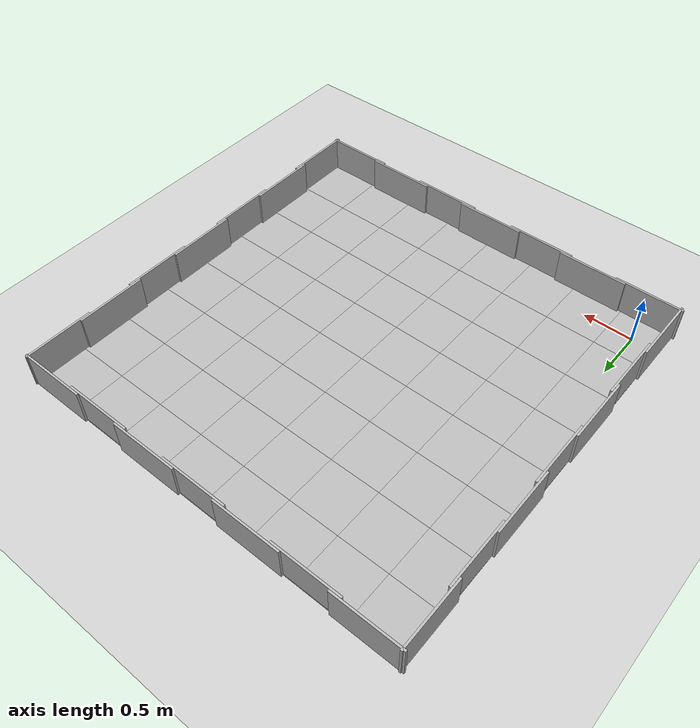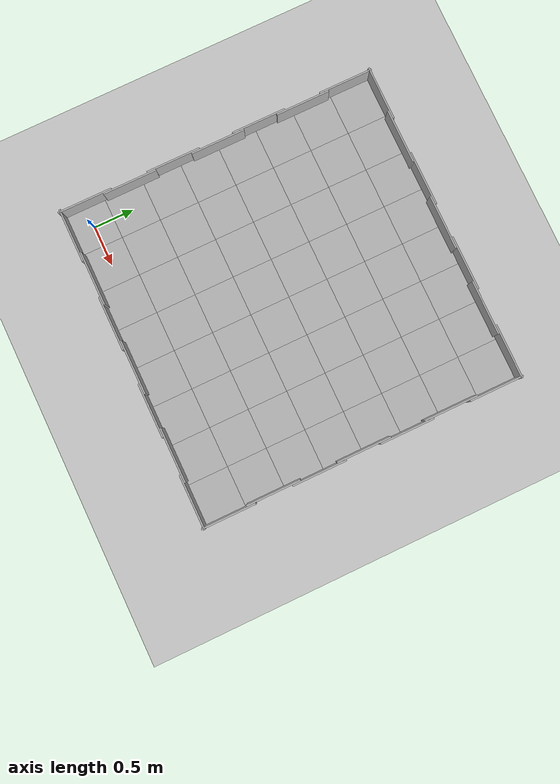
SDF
<sdf version="1.5">
 <world name="default">
  <physics name="default_physics" default="0" type="ode">
   <max_step_size>0.001</max_step_size>
   <real_time_factor>1</real_time_factor>
   <real_time_update_rate>1000</real_time_update_rate>
  </physics>
  <scene>
   <ambient>0.4 0.4 0.4 1</ambient>
   <background>0.7 0.7 0.7 1</background>
   <shadows>0</shadows>
   <grid>0</grid>
  </scene>
  <light name="sun" type="directional">
   <cast_shadows>0</cast_shadows>
   <pose>0 -100 10 0 -0 0</pose>
   <diffuse>0.8 0.8 0.8 1</diffuse>
   <specular>0.1 0.1 0.1 1</specular>
   <attenuation>
    <range>1000</range>
    <constant>0.9</constant>
    <linear>0.01</linear>
    <quadratic>0.001</quadratic>
   </attenuation>
   <direction>-0.5 0.5 -1</direction>
  </light>
  <include><uri>model://ground_plane</uri></include>
  <include><name>arena</name><uri>model://dia_cr5_arena</uri></include>
  <include><name>panel-1n</name><uri>model://dia_panel_big</uri><pose>0.05 -0.26 0.17 1.57 0 0</pose></include>
  <include><name>panel-2n</name><uri>model://dia_panel_big</uri><pose>0.62 -0.24 0.17 1.57 0 0</pose></include>
  <include><name>panel-3n</name><uri>model://dia_panel_big</uri><pose>1.19 -0.26 0.17 1.57 0 0</pose></include>
  <include><name>panel-4n</name><uri>model://dia_panel_big</uri><pose>1.76 -0.24 0.17 1.57 0 0</pose></include>
  <include><name>panel-5n</name><uri>model://dia_panel_big</uri><pose>2.3 -0.26 0.17 1.57 0 0</pose></include>
  <include><name>panel-6n</name><uri>model://dia_panel_big</uri><pose>2.87 -0.24 0.17 1.57 0 0</pose></include>
  <include><name>panel-7n</name><uri>model://dia_panel_big</uri><pose>3.44 -0.26 0.17 1.57 0 0</pose></include>
  <include>
   <name>panel-1e</name>
   <uri>model://dia_panel_big</uri>
   <pose>-0.26 0.05 0.17 1.57 0 1.57</pose>
  </include>
  <include>
   <name>panel-2e</name>
   <uri>model://dia_panel_big</uri>
   <pose>-0.24 0.62 0.17 1.57 0 1.57</pose>
  </include>
  <include>
   <name>panel-3e</name>
   <uri>model://dia_panel_big</uri>
   <pose>-0.26 1.19 0.17 1.57 0 1.57</pose>
  </include>
  <include>
   <name>panel-4e</name>
   <uri>model://dia_panel_big</uri>
   <pose>-0.24 1.76 0.17 1.57 0 1.57</pose>
  </include>
  <include>
   <name>panel-5e</name>
   <uri>model://dia_panel_big</uri>
   <pose>-0.26 2.3 0.17 1.57 0 1.57</pose>
  </include>
  <include>
   <name>panel-6e</name>
   <uri>model://dia_panel_big</uri>
   <pose>-0.24 2.87 0.17 1.57 0 1.57</pose>
  </include>
  <include>
   <name>panel-7e</name>
   <uri>model://dia_panel_big</uri>
   <pose>-0.26 3.44 0.17 1.57 0 1.57</pose>
  </include>
  <include><name>panel-1s</name><uri>model://dia_panel_big</uri><pose>0.05 3.76 0.17 1.57 0 0</pose></include>
  <include><name>panel-2s</name><uri>model://dia_panel_big</uri><pose>0.62 3.74 0.17 1.57 0 0</pose></include>
  <include><name>panel-3s</name><uri>model://dia_panel_big</uri><pose>1.19 3.76 0.17 1.57 0 0</pose></include>
  <include><name>panel-4s</name><uri>model://dia_panel_big</uri><pose>1.76 3.74 0.17 1.57 0 0</pose></include>
  <include><name>panel-5s</name><uri>model://dia_panel_big</uri><pose>2.3 3.76 0.17 1.57 0 0</pose></include>
  <include><name>panel-6s</name><uri>model://dia_panel_big</uri><pose>2.87 3.74 0.17 1.57 0 0</pose></include>
  <include><name>panel-7s</name><uri>model://dia_panel_big</uri><pose>3.44 3.76 0.17 1.57 0 0</pose></include>
  <include>
   <name>panel-1w</name>
   <uri>model://dia_panel_big</uri>
   <pose>3.76 0.05 0.17 1.57 0 1.57</pose>
  </include>
  <include>
   <name>panel-2w</name>
   <uri>model://dia_panel_big</uri>
   <pose>3.74 0.62 0.17 1.57 0 1.57</pose>
  </include>
  <include>
   <name>panel-3w</name>
   <uri>model://dia_panel_big</uri>
   <pose>3.76 1.19 0.17 1.57 0 1.57</pose>
  </include>
  <include>
   <name>panel-4w</name>
   <uri>model://dia_panel_big</uri>
   <pose>3.74 1.76 0.17 1.57 0 1.57</pose>
  </include>
  <include><name>panel-5w</name><uri>model://dia_panel_big</uri><pose>3.76 2.3 0.17 1.57 0 1.57</pose></include>
  <include>
   <name>panel-6w</name>
   <uri>model://dia_panel_big</uri>
   <pose>3.74 2.87 0.17 1.57 0 1.57</pose>
  </include>
  <include>
   <name>panel-7w</name>
   <uri>model://dia_panel_big</uri>
   <pose>3.76 3.44 0.17 1.57 0 1.57</pose>
  </include>
  <gravity>0 0 -9.8</gravity>
  <magnetic_field>6e-06 2.3e-05 -4.2e-05</magnetic_field>
  <atmosphere type="adiabatic"/>
  <spherical_coordinates>
   <surface_model>EARTH_WGS84</surface_model>
   <latitude_deg>0</latitude_deg>
   <longitude_deg>0</longitude_deg>
   <elevation>0</elevation>
   <heading_deg>0</heading_deg>
  </spherical_coordinates>
 </world>
</sdf>

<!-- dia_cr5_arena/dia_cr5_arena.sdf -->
<sdf version="1.5">
  <model name="dia_cr5_arena">
    <static>true</static>
    <link name="link">
      <collision name="surface_collision">
        <pose>1.75 1.75 0 0 0 0 0</pose>
        <geometry>
          <box>
            <size>4.1 4.1 0.01</size>
          </box>
        </geometry>
        <surface>
          <friction>
            <ode>
              <mu>0.20</mu>
              <mu2>0.20</mu2>
            </ode>
          </friction>
        </surface>
      </collision>

      <!-- Floor -->

      <visual name="tile-1">
        <pose>0 0 0 0 0 0 0</pose>
        <geometry>
          <box>
            <size>0.5 0.5 0.01</size>
          </box>
        </geometry>
        <material>
          <script>
            <uri>model://dia_cr5_arena/materials/scripts</uri>
            <uri>model://dia_cr5_arena/materials/textures</uri>
            <name>arena_tile/Diffuse</name>
          </script>
        </material>
      </visual>

      <visual name="tile-2">
        <pose>0.5 0 0 0 0 0 0</pose>
        <geometry>
          <box>
            <size>0.5 0.5 0.01</size>
          </box>
        </geometry>
        <material>
          <script>
            <uri>model://dia_cr5_arena/materials/scripts</uri>
            <uri>model://dia_cr5_arena/materials/textures</uri>
            <name>arena_tile/Diffuse</name>
          </script>
        </material>
      </visual>

      <visual name="tile-3">
        <pose>1 0 0 0 0 0 0</pose>
        <geometry>
          <box>
            <size>0.5 0.5 0.01</size>
          </box>
        </geometry>
        <material>
          <script>
            <uri>model://dia_cr5_arena/materials/scripts</uri>
            <uri>model://dia_cr5_arena/materials/textures</uri>
            <name>arena_tile/Diffuse</name>
          </script>
        </material>
      </visual>

      <visual name="tile-4">
        <pose>1.5 0 0 0 0 0 0</pose>
        <geometry>
          <box>
            <size>0.5 0.5 0.01</size>
          </box>
        </geometry>
        <material>
          <script>
            <uri>model://dia_cr5_arena/materials/scripts</uri>
            <uri>model://dia_cr5_arena/materials/textures</uri>
            <name>arena_tile/Diffuse</name>
          </script>
        </material>
      </visual>

      <visual name="tile-5">
        <pose>2 0 0 0 0 0 0</pose>
        <geometry>
          <box>
            <size>0.5 0.5 0.01</size>
          </box>
        </geometry>
        <material>
          <script>
            <uri>model://dia_cr5_arena/materials/scripts</uri>
            <uri>model://dia_cr5_arena/materials/textures</uri>
            <name>arena_tile/Diffuse</name>
          </script>
        </material>
      </visual>

      <visual name="tile-6">
        <pose>2.5 0 0 0 0 0 0</pose>
        <geometry>
          <box>
            <size>0.5 0.5 0.01</size>
          </box>
        </geometry>
        <material>
          <script>
            <uri>model://dia_cr5_arena/materials/scripts</uri>
            <uri>model://dia_cr5_arena/materials/textures</uri>
            <name>arena_tile/Diffuse</name>
          </script>
        </material>
      </visual>

      <visual name="tile-7">
        <pose>3 0 0 0 0 0 0</pose>
        <geometry>
          <box>
            <size>0.5 0.5 0.01</size>
          </box>
        </geometry>
        <material>
          <script>
            <uri>model://dia_cr5_arena/materials/scripts</uri>
            <uri>model://dia_cr5_arena/materials/textures</uri>
            <name>arena_tile/Diffuse</name>
          </script>
        </material>
      </visual>

      <visual name="tile-8">
        <pose>3.5 0 0 0 0 0 0</pose>
        <geometry>
          <box>
            <size>0.5 0.5 0.01</size>
          </box>
        </geometry>
        <material>
          <script>
            <uri>model://dia_cr5_arena/materials/scripts</uri>
            <uri>model://dia_cr5_arena/materials/textures</uri>
            <name>arena_tile/Diffuse</name>
          </script>
        </material>
      </visual>

      <visual name="tile-9">
        <pose>0 0.5 0 0 0 0 0</pose>
        <geometry>
          <box>
            <size>0.5 0.5 0.01</size>
          </box>
        </geometry>
        <material>
          <script>
            <uri>model://dia_cr5_arena/materials/scripts</uri>
            <uri>model://dia_cr5_arena/materials/textures</uri>
            <name>arena_tile/Diffuse</name>
          </script>
        </material>
      </visual>

      <visual name="tile-10">
        <pose>0.5 0.5 0 0 0 0 0</pose>
        <geometry>
          <box>
            <size>0.5 0.5 0.01</size>
          </box>
        </geometry>
        <material>
          <script>
            <uri>model://dia_cr5_arena/materials/scripts</uri>
            <uri>model://dia_cr5_arena/materials/textures</uri>
            <name>arena_tile/Diffuse</name>
          </script>
        </material>
      </visual>

      <visual name="tile-11">
        <pose>1 0.5 0 0 0 0 0</pose>
        <geometry>
          <box>
            <size>0.5 0.5 0.01</size>
          </box>
        </geometry>
        <material>
          <script>
            <uri>model://dia_cr5_arena/materials/scripts</uri>
            <uri>model://dia_cr5_arena/materials/textures</uri>
            <name>arena_tile/Diffuse</name>
          </script>
        </material>
      </visual>

      <visual name="tile-12">
        <pose>1.5 0.5 0 0 0 0 0</pose>
        <geometry>
          <box>
            <size>0.5 0.5 0.01</size>
          </box>
        </geometry>
        <material>
          <script>
            <uri>model://dia_cr5_arena/materials/scripts</uri>
            <uri>model://dia_cr5_arena/materials/textures</uri>
            <name>arena_tile/Diffuse</name>
          </script>
        </material>
      </visual>

      <visual name="tile-13">
        <pose>2 0.5 0 0 0 0 0</pose>
        <geometry>
          <box>
            <size>0.5 0.5 0.01</size>
          </box>
        </geometry>
        <material>
          <script>
            <uri>model://dia_cr5_arena/materials/scripts</uri>
            <uri>model://dia_cr5_arena/materials/textures</uri>
            <name>arena_tile/Diffuse</name>
          </script>
        </material>
      </visual>

      <visual name="tile-14">
        <pose>2.5 0.5 0 0 0 0 0</pose>
        <geometry>
          <box>
            <size>0.5 0.5 0.01</size>
          </box>
        </geometry>
        <material>
          <script>
            <uri>model://dia_cr5_arena/materials/scripts</uri>
            <uri>model://dia_cr5_arena/materials/textures</uri>
            <name>arena_tile/Diffuse</name>
          </script>
        </material>
      </visual>

      <visual name="tile-15">
        <pose>3 0.5 0 0 0 0 0</pose>
        <geometry>
          <box>
            <size>0.5 0.5 0.01</size>
          </box>
        </geometry>
        <material>
          <script>
            <uri>model://dia_cr5_arena/materials/scripts</uri>
            <uri>model://dia_cr5_arena/materials/textures</uri>
            <name>arena_tile/Diffuse</name>
          </script>
        </material>
      </visual>

      <visual name="tile-16">
        <pose>3.5 0.5 0 0 0 0 0</pose>
        <geometry>
          <box>
            <size>0.5 0.5 0.01</size>
          </box>
        </geometry>
        <material>
          <script>
            <uri>model://dia_cr5_arena/materials/scripts</uri>
            <uri>model://dia_cr5_arena/materials/textures</uri>
            <name>arena_tile/Diffuse</name>
          </script>
        </material>
      </visual>

      <visual name="tile-17">
        <pose>0 1 0 0 0 0 0</pose>
        <geometry>
          <box>
            <size>0.5 0.5 0.01</size>
          </box>
        </geometry>
        <material>
          <script>
            <uri>model://dia_cr5_arena/materials/scripts</uri>
            <uri>model://dia_cr5_arena/materials/textures</uri>
            <name>arena_tile/Diffuse</name>
          </script>
        </material>
      </visual>

      <visual name="tile-18">
        <pose>0.5 1 0 0 0 0 0</pose>
        <geometry>
          <box>
            <size>0.5 0.5 0.01</size>
          </box>
        </geometry>
        <material>
          <script>
            <uri>model://dia_cr5_arena/materials/scripts</uri>
            <uri>model://dia_cr5_arena/materials/textures</uri>
            <name>arena_tile/Diffuse</name>
          </script>
        </material>
      </visual>

      <visual name="tile-19">
        <pose>1 1 0 0 0 0 0</pose>
        <geometry>
          <box>
            <size>0.5 0.5 0.01</size>
          </box>
        </geometry>
        <material>
          <script>
            <uri>model://dia_cr5_arena/materials/scripts</uri>
            <uri>model://dia_cr5_arena/materials/textures</uri>
            <name>arena_tile/Diffuse</name>
          </script>
        </material>
      </visual>

      <visual name="tile-20">
        <pose>1.5 1 0 0 0 0 0</pose>
        <geometry>
          <box>
            <size>0.5 0.5 0.01</size>
          </box>
        </geometry>
        <material>
          <script>
            <uri>model://dia_cr5_arena/materials/scripts</uri>
            <uri>model://dia_cr5_arena/materials/textures</uri>
            <name>arena_tile/Diffuse</name>
          </script>
        </material>
      </visual>

      <visual name="tile-21">
        <pose>2 1 0 0 0 0 0</pose>
        <geometry>
          <box>
            <size>0.5 0.5 0.01</size>
          </box>
        </geometry>
        <material>
          <script>
            <uri>model://dia_cr5_arena/materials/scripts</uri>
            <uri>model://dia_cr5_arena/materials/textures</uri>
            <name>arena_tile/Diffuse</name>
          </script>
        </material>
      </visual>

      <visual name="tile-22">
        <pose>2.5 1 0 0 0 0 0</pose>
        <geometry>
          <box>
            <size>0.5 0.5 0.01</size>
          </box>
        </geometry>
        <material>
          <script>
            <uri>model://dia_cr5_arena/materials/scripts</uri>
            <uri>model://dia_cr5_arena/materials/textures</uri>
            <name>arena_tile/Diffuse</name>
          </script>
        </material>
      </visual>

      <visual name="tile-23">
        <pose>3 1 0 0 0 0 0</pose>
        <geometry>
          <box>
            <size>0.5 0.5 0.01</size>
          </box>
        </geometry>
        <material>
          <script>
            <uri>model://dia_cr5_arena/materials/scripts</uri>
            <uri>model://dia_cr5_arena/materials/textures</uri>
            <name>arena_tile/Diffuse</name>
          </script>
        </material>
      </visual>

      <visual name="tile-24">
        <pose>3.5 1 0 0 0 0 0</pose>
        <geometry>
          <box>
            <size>0.5 0.5 0.01</size>
          </box>
        </geometry>
        <material>
          <script>
            <uri>model://dia_cr5_arena/materials/scripts</uri>
            <uri>model://dia_cr5_arena/materials/textures</uri>
            <name>arena_tile/Diffuse</name>
          </script>
        </material>
      </visual>

      <visual name="tile-25">
        <pose>0 1.5 0 0 0 0 0</pose>
        <geometry>
          <box>
            <size>0.5 0.5 0.01</size>
          </box>
        </geometry>
        <material>
          <script>
            <uri>model://dia_cr5_arena/materials/scripts</uri>
            <uri>model://dia_cr5_arena/materials/textures</uri>
            <name>arena_tile/Diffuse</name>
          </script>
        </material>
      </visual>

      <visual name="tile-26">
        <pose>0.5 1.5 0 0 0 0 0</pose>
        <geometry>
          <box>
            <size>0.5 0.5 0.01</size>
          </box>
        </geometry>
        <material>
          <script>
            <uri>model://dia_cr5_arena/materials/scripts</uri>
            <uri>model://dia_cr5_arena/materials/textures</uri>
            <name>arena_tile/Diffuse</name>
          </script>
        </material>
      </visual>

      <visual name="tile-27">
        <pose>1 1.5 0 0 0 0 0</pose>
        <geometry>
          <box>
            <size>0.5 0.5 0.01</size>
          </box>
        </geometry>
        <material>
          <script>
            <uri>model://dia_cr5_arena/materials/scripts</uri>
            <uri>model://dia_cr5_arena/materials/textures</uri>
            <name>arena_tile/Diffuse</name>
          </script>
        </material>
      </visual>

      <visual name="tile-28">
        <pose>1.5 1.5 0 0 0 0 0</pose>
        <geometry>
          <box>
            <size>0.5 0.5 0.01</size>
          </box>
        </geometry>
        <material>
          <script>
            <uri>model://dia_cr5_arena/materials/scripts</uri>
            <uri>model://dia_cr5_arena/materials/textures</uri>
            <name>arena_tile/Diffuse</name>
          </script>
        </material>
      </visual>

      <visual name="tile-29">
        <pose>2 1.5 0 0 0 0 0</pose>
        <geometry>
          <box>
            <size>0.5 0.5 0.01</size>
          </box>
        </geometry>
        <material>
          <script>
            <uri>model://dia_cr5_arena/materials/scripts</uri>
            <uri>model://dia_cr5_arena/materials/textures</uri>
            <name>arena_tile/Diffuse</name>
          </script>
        </material>
      </visual>

      <visual name="tile-30">
        <pose>2.5 1.5 0 0 0 0 0</pose>
        <geometry>
          <box>
            <size>0.5 0.5 0.01</size>
          </box>
        </geometry>
        <material>
          <script>
            <uri>model://dia_cr5_arena/materials/scripts</uri>
            <uri>model://dia_cr5_arena/materials/textures</uri>
            <name>arena_tile/Diffuse</name>
          </script>
        </material>
      </visual>

      <visual name="tile-31">
        <pose>3 1.5 0 0 0 0 0</pose>
        <geometry>
          <box>
            <size>0.5 0.5 0.01</size>
          </box>
        </geometry>
        <material>
          <script>
            <uri>model://dia_cr5_arena/materials/scripts</uri>
            <uri>model://dia_cr5_arena/materials/textures</uri>
            <name>arena_tile/Diffuse</name>
          </script>
        </material>
      </visual>

      <visual name="tile-32">
        <pose>3.5 1.5 0 0 0 0 0</pose>
        <geometry>
          <box>
            <size>0.5 0.5 0.01</size>
          </box>
        </geometry>
        <material>
          <script>
            <uri>model://dia_cr5_arena/materials/scripts</uri>
            <uri>model://dia_cr5_arena/materials/textures</uri>
            <name>arena_tile/Diffuse</name>
          </script>
        </material>
      </visual>

      <visual name="tile-33">
        <pose>0 2 0 0 0 0 0</pose>
        <geometry>
          <box>
            <size>0.5 0.5 0.01</size>
          </box>
        </geometry>
        <material>
          <script>
            <uri>model://dia_cr5_arena/materials/scripts</uri>
            <uri>model://dia_cr5_arena/materials/textures</uri>
            <name>arena_tile/Diffuse</name>
          </script>
        </material>
      </visual>

      <visual name="tile-34">
        <pose>0.5 2 0 0 0 0 0</pose>
        <geometry>
          <box>
            <size>0.5 0.5 0.01</size>
          </box>
        </geometry>
        <material>
          <script>
            <uri>model://dia_cr5_arena/materials/scripts</uri>
            <uri>model://dia_cr5_arena/materials/textures</uri>
            <name>arena_tile/Diffuse</name>
          </script>
        </material>
      </visual>

      <visual name="tile-35">
        <pose>1 2 0 0 0 0 0</pose>
        <geometry>
          <box>
            <size>0.5 0.5 0.01</size>
          </box>
        </geometry>
        <material>
          <script>
            <uri>model://dia_cr5_arena/materials/scripts</uri>
            <uri>model://dia_cr5_arena/materials/textures</uri>
            <name>arena_tile/Diffuse</name>
          </script>
        </material>
      </visual>

      <visual name="tile-36">
        <pose>1.5 2 0 0 0 0 0</pose>
        <geometry>
          <box>
            <size>0.5 0.5 0.01</size>
          </box>
        </geometry>
        <material>
          <script>
            <uri>model://dia_cr5_arena/materials/scripts</uri>
            <uri>model://dia_cr5_arena/materials/textures</uri>
            <name>arena_tile/Diffuse</name>
          </script>
        </material>
      </visual>

      <visual name="tile-37">
        <pose>2 2 0 0 0 0 0</pose>
        <geometry>
          <box>
            <size>0.5 0.5 0.01</size>
          </box>
        </geometry>
        <material>
          <script>
            <uri>model://dia_cr5_arena/materials/scripts</uri>
            <uri>model://dia_cr5_arena/materials/textures</uri>
            <name>arena_tile/Diffuse</name>
          </script>
        </material>
      </visual>

      <visual name="tile-38">
        <pose>2.5 2 0 0 0 0 0</pose>
        <geometry>
          <box>
            <size>0.5 0.5 0.01</size>
          </box>
        </geometry>
        <material>
          <script>
            <uri>model://dia_cr5_arena/materials/scripts</uri>
            <uri>model://dia_cr5_arena/materials/textures</uri>
            <name>arena_tile/Diffuse</name>
          </script>
        </material>
      </visual>

      <visual name="tile-39">
        <pose>3 2 0 0 0 0 0</pose>
        <geometry>
          <box>
            <size>0.5 0.5 0.01</size>
          </box>
        </geometry>
        <material>
          <script>
            <uri>model://dia_cr5_arena/materials/scripts</uri>
            <uri>model://dia_cr5_arena/materials/textures</uri>
            <name>arena_tile/Diffuse</name>
          </script>
        </material>
      </visual>

      <visual name="tile-40">
        <pose>3.5 2 0 0 0 0 0</pose>
        <geometry>
          <box>
            <size>0.5 0.5 0.01</size>
          </box>
        </geometry>
        <material>
          <script>
            <uri>model://dia_cr5_arena/materials/scripts</uri>
            <uri>model://dia_cr5_arena/materials/textures</uri>
            <name>arena_tile/Diffuse</name>
          </script>
        </material>
      </visual>

      <visual name="tile-41">
        <pose>0 2.5 0 0 0 0 0</pose>
        <geometry>
          <box>
            <size>0.5 0.5 0.01</size>
          </box>
        </geometry>
        <material>
          <script>
            <uri>model://dia_cr5_arena/materials/scripts</uri>
            <uri>model://dia_cr5_arena/materials/textures</uri>
            <name>arena_tile/Diffuse</name>
          </script>
        </material>
      </visual>

      <visual name="tile-42">
        <pose>0.5 2.5 0 0 0 0 0</pose>
        <geometry>
          <box>
            <size>0.5 0.5 0.01</size>
          </box>
        </geometry>
        <material>
          <script>
            <uri>model://dia_cr5_arena/materials/scripts</uri>
            <uri>model://dia_cr5_arena/materials/textures</uri>
            <name>arena_tile/Diffuse</name>
          </script>
        </material>
      </visual>

      <visual name="tile-43">
        <pose>1 2.5 0 0 0 0 0</pose>
        <geometry>
          <box>
            <size>0.5 0.5 0.01</size>
          </box>
        </geometry>
        <material>
          <script>
            <uri>model://dia_cr5_arena/materials/scripts</uri>
            <uri>model://dia_cr5_arena/materials/textures</uri>
            <name>arena_tile/Diffuse</name>
          </script>
        </material>
      </visual>

      <visual name="tile-44">
        <pose>1.5 2.5 0 0 0 0 0</pose>
        <geometry>
          <box>
            <size>0.5 0.5 0.01</size>
          </box>
        </geometry>
        <material>
          <script>
            <uri>model://dia_cr5_arena/materials/scripts</uri>
            <uri>model://dia_cr5_arena/materials/textures</uri>
            <name>arena_tile/Diffuse</name>
          </script>
        </material>
      </visual>

      <visual name="tile-45">
        <pose>2 2.5 0 0 0 0 0</pose>
        <geometry>
          <box>
            <size>0.5 0.5 0.01</size>
          </box>
        </geometry>
        <material>
          <script>
            <uri>model://dia_cr5_arena/materials/scripts</uri>
            <uri>model://dia_cr5_arena/materials/textures</uri>
            <name>arena_tile/Diffuse</name>
          </script>
        </material>
      </visual>

      <visual name="tile-46">
        <pose>2.5 2.5 0 0 0 0 0</pose>
        <geometry>
          <box>
            <size>0.5 0.5 0.01</size>
          </box>
        </geometry>
        <material>
          <script>
            <uri>model://dia_cr5_arena/materials/scripts</uri>
            <uri>model://dia_cr5_arena/materials/textures</uri>
            <name>arena_tile/Diffuse</name>
          </script>
        </material>
      </visual>

      <visual name="tile-47">
        <pose>3 2.5 0 0 0 0 0</pose>
        <geometry>
          <box>
            <size>0.5 0.5 0.01</size>
          </box>
        </geometry>
        <material>
          <script>
            <uri>model://dia_cr5_arena/materials/scripts</uri>
            <uri>model://dia_cr5_arena/materials/textures</uri>
            <name>arena_tile/Diffuse</name>
          </script>
        </material>
      </visual>

      <visual name="tile-48">
        <pose>3.5 2.5 0 0 0 0 0</pose>
        <geometry>
          <box>
            <size>0.5 0.5 0.01</size>
          </box>
        </geometry>
        <material>
          <script>
            <uri>model://dia_cr5_arena/materials/scripts</uri>
            <uri>model://dia_cr5_arena/materials/textures</uri>
            <name>arena_tile/Diffuse</name>
          </script>
        </material>
      </visual>

      <visual name="tile-49">
        <pose>0 3 0 0 0 0 0</pose>
        <geometry>
          <box>
            <size>0.5 0.5 0.01</size>
          </box>
        </geometry>
        <material>
          <script>
            <uri>model://dia_cr5_arena/materials/scripts</uri>
            <uri>model://dia_cr5_arena/materials/textures</uri>
            <name>arena_tile/Diffuse</name>
          </script>
        </material>
      </visual>

      <visual name="tile-50">
        <pose>0.5 3 0 0 0 0 0</pose>
        <geometry>
          <box>
            <size>0.5 0.5 0.01</size>
          </box>
        </geometry>
        <material>
          <script>
            <uri>model://dia_cr5_arena/materials/scripts</uri>
            <uri>model://dia_cr5_arena/materials/textures</uri>
            <name>arena_tile/Diffuse</name>
          </script>
        </material>
      </visual>

      <visual name="tile-51">
        <pose>1 3 0 0 0 0 0</pose>
        <geometry>
          <box>
            <size>0.5 0.5 0.01</size>
          </box>
        </geometry>
        <material>
          <script>
            <uri>model://dia_cr5_arena/materials/scripts</uri>
            <uri>model://dia_cr5_arena/materials/textures</uri>
            <name>arena_tile/Diffuse</name>
          </script>
        </material>
      </visual>

      <visual name="tile-52">
        <pose>1.5 3 0 0 0 0 0</pose>
        <geometry>
          <box>
            <size>0.5 0.5 0.01</size>
          </box>
        </geometry>
        <material>
          <script>
            <uri>model://dia_cr5_arena/materials/scripts</uri>
            <uri>model://dia_cr5_arena/materials/textures</uri>
            <name>arena_tile/Diffuse</name>
          </script>
        </material>
      </visual>

      <visual name="tile-53">
        <pose>2 3 0 0 0 0 0</pose>
        <geometry>
          <box>
            <size>0.5 0.5 0.01</size>
          </box>
        </geometry>
        <material>
          <script>
            <uri>model://dia_cr5_arena/materials/scripts</uri>
            <uri>model://dia_cr5_arena/materials/textures</uri>
            <name>arena_tile/Diffuse</name>
          </script>
        </material>
      </visual>

      <visual name="tile-54">
        <pose>2.5 3 0 0 0 0 0</pose>
        <geometry>
          <box>
            <size>0.5 0.5 0.01</size>
          </box>
        </geometry>
        <material>
          <script>
            <uri>model://dia_cr5_arena/materials/scripts</uri>
            <uri>model://dia_cr5_arena/materials/textures</uri>
            <name>arena_tile/Diffuse</name>
          </script>
        </material>
      </visual>

      <visual name="tile-55">
        <pose>3 3 0 0 0 0 0</pose>
        <geometry>
          <box>
            <size>0.5 0.5 0.01</size>
          </box>
        </geometry>
        <material>
          <script>
            <uri>model://dia_cr5_arena/materials/scripts</uri>
            <uri>model://dia_cr5_arena/materials/textures</uri>
            <name>arena_tile/Diffuse</name>
          </script>
        </material>
      </visual>

      <visual name="tile-56">
        <pose>3.5 3 0 0 0 0 0</pose>
        <geometry>
          <box>
            <size>0.5 0.5 0.01</size>
          </box>
        </geometry>
        <material>
          <script>
            <uri>model://dia_cr5_arena/materials/scripts</uri>
            <uri>model://dia_cr5_arena/materials/textures</uri>
            <name>arena_tile/Diffuse</name>
          </script>
        </material>
      </visual>

      <visual name="tile-57">
        <pose>0 3.5 0 0 0 0 0</pose>
        <geometry>
          <box>
            <size>0.5 0.5 0.01</size>
          </box>
        </geometry>
        <material>
          <script>
            <uri>model://dia_cr5_arena/materials/scripts</uri>
            <uri>model://dia_cr5_arena/materials/textures</uri>
            <name>arena_tile/Diffuse</name>
          </script>
        </material>
      </visual>

      <visual name="tile-58">
        <pose>0.5 3.5 0 0 0 0 0</pose>
        <geometry>
          <box>
            <size>0.5 0.5 0.01</size>
          </box>
        </geometry>
        <material>
          <script>
            <uri>model://dia_cr5_arena/materials/scripts</uri>
            <uri>model://dia_cr5_arena/materials/textures</uri>
            <name>arena_tile/Diffuse</name>
          </script>
        </material>
      </visual>

      <visual name="tile-59">
        <pose>1 3.5 0 0 0 0 0</pose>
        <geometry>
          <box>
            <size>0.5 0.5 0.01</size>
          </box>
        </geometry>
        <material>
          <script>
            <uri>model://dia_cr5_arena/materials/scripts</uri>
            <uri>model://dia_cr5_arena/materials/textures</uri>
            <name>arena_tile/Diffuse</name>
          </script>
        </material>
      </visual>

      <visual name="tile-60">
        <pose>1.5 3.5 0 0 0 0 0</pose>
        <geometry>
          <box>
            <size>0.5 0.5 0.01</size>
          </box>
        </geometry>
        <material>
          <script>
            <uri>model://dia_cr5_arena/materials/scripts</uri>
            <uri>model://dia_cr5_arena/materials/textures</uri>
            <name>arena_tile/Diffuse</name>
          </script>
        </material>
      </visual>

      <visual name="tile-61">
        <pose>2 3.5 0 0 0 0 0</pose>
        <geometry>
          <box>
            <size>0.5 0.5 0.01</size>
          </box>
        </geometry>
        <material>
          <script>
            <uri>model://dia_cr5_arena/materials/scripts</uri>
            <uri>model://dia_cr5_arena/materials/textures</uri>
            <name>arena_tile/Diffuse</name>
          </script>
        </material>
      </visual>

      <visual name="tile-62">
        <pose>2.5 3.5 0 0 0 0 0</pose>
        <geometry>
          <box>
            <size>0.5 0.5 0.01</size>
          </box>
        </geometry>
        <material>
          <script>
            <uri>model://dia_cr5_arena/materials/scripts</uri>
            <uri>model://dia_cr5_arena/materials/textures</uri>
            <name>arena_tile/Diffuse</name>
          </script>
        </material>
      </visual>

      <visual name="tile-63">
        <pose>3 3.5 0 0 0 0 0</pose>
        <geometry>
          <box>
            <size>0.5 0.5 0.01</size>
          </box>
        </geometry>
        <material>
          <script>
            <uri>model://dia_cr5_arena/materials/scripts</uri>
            <uri>model://dia_cr5_arena/materials/textures</uri>
            <name>arena_tile/Diffuse</name>
          </script>
        </material>
      </visual>

      <visual name="tile-64">
        <pose>3.5 3.5 0 0 0 0 0</pose>
        <geometry>
          <box>
            <size>0.5 0.5 0.01</size>
          </box>
        </geometry>
        <material>
          <script>
            <uri>model://dia_cr5_arena/materials/scripts</uri>
            <uri>model://dia_cr5_arena/materials/textures</uri>
            <name>arena_tile/Diffuse</name>
          </script>
        </material>
      </visual>

    </link>
  </model>
</sdf>

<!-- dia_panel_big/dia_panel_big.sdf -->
<sdf version="1.5">
  <model name="dia_panel_big">
    <static>true</static>
    <link name="link">
      <collision name="surface">
        <pose>0 0 0 0 0 0</pose>
        <geometry>
          <box>
            <size>0.68 0.364 0.02</size>
          </box>
        </geometry>
      </collision>
      <visual name="surface">
        <pose>0 0 0 0 0 0</pose>
        <geometry>
          <box>
            <size>0.68 0.364 0.02</size>
          </box>
        </geometry>
        <material>
          <script>
            <uri>model://dia_panel_big/materials/scripts</uri>
            <uri>model://dia_panel_big/materials/textures</uri>
            <name>dia_panel_big/Diffuse</name>
          </script>
        </material>
      </visual>
    </link>
  </model>
</sdf>
